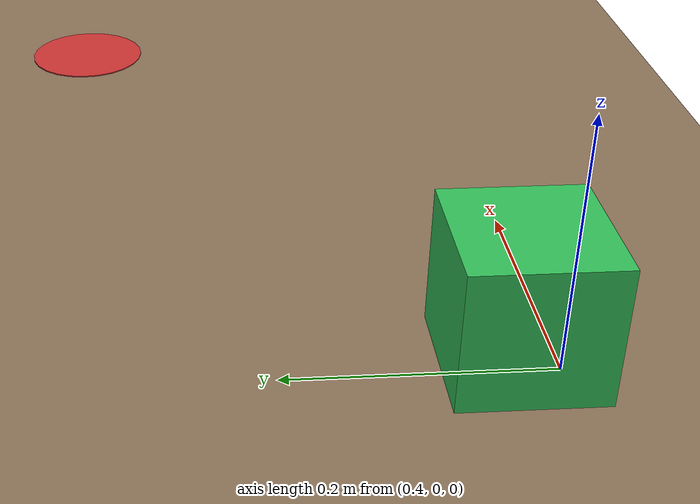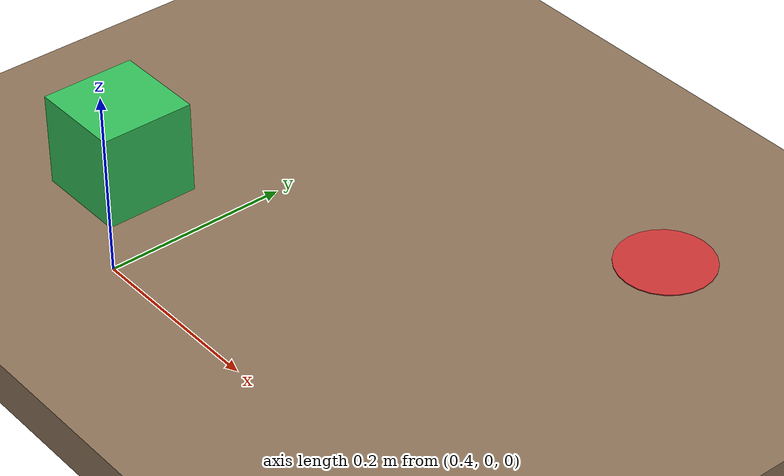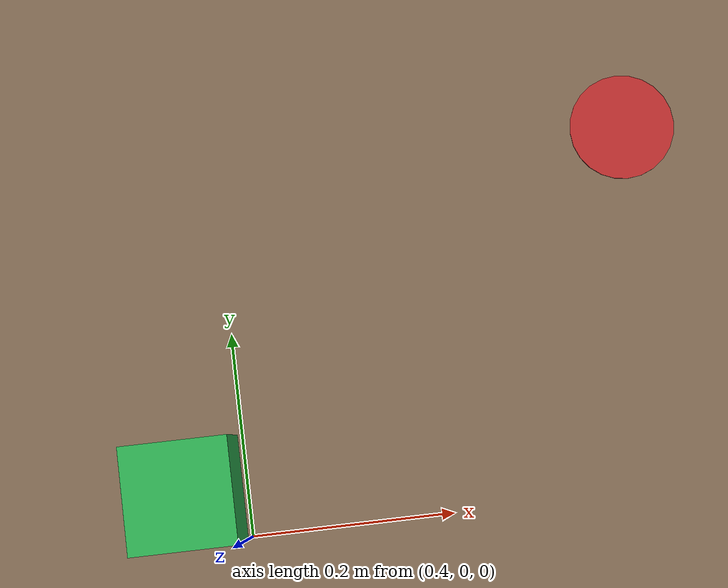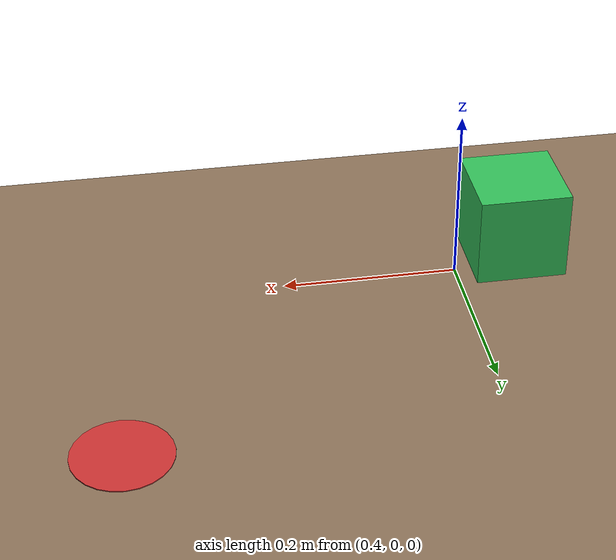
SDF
<?xml version="1.0"?>
<sdf version="1.7">
  <world name="default">
    <model name="table">
      <static>true</static>
      <pose>0.2 0.0 0.025 0 0 0</pose>
      <link name="table_link">
        <visual name="table_visual">
          <geometry><box><size>2 2 0.05</size></box></geometry>
          <material><diffuse>0.55 0.45 0.35 1.0</diffuse></material>
        </visual>
        <collision name="table_collision">
          <geometry><box><size>2 2 0.05</size></box></geometry>
          <surface>
            <friction>
              <ode><mu>0.5</mu><mu2>0.5</mu2></ode>
            </friction>
          </surface>
        </collision>
      </link>
    </model>
    <model name="object">
      <pose>0.35 0.05 0.1 0 0 0</pose>
      <link name="object_link">
        <inertial>
          <mass>0.5</mass>
          <inertia>
            <ixx>0.000833333</ixx><iyy>0.000833333</iyy><izz>0.000833333</izz>
            <ixy>0</ixy><ixz>0</ixz><iyz>0</iyz>
          </inertia>
        </inertial>
        <visual name="object_visual">
          <geometry><box><size>0.1 0.1 0.1</size></box></geometry>
          <material><diffuse>0.2 0.75 0.35 1.0</diffuse></material>
        </visual>
        <collision name="object_collision">
          <geometry><box><size>0.1 0.1 0.1</size></box></geometry>
          <surface>
            <friction>
              <ode><mu>0.8</mu><mu2>0.8</mu2></ode>
            </friction>
          </surface>
        </collision>
      </link>
    </model>
    <model name="cylinder_target">
      <pose>0.8 0.35 0.075 0 0 0</pose>
      <static>true</static>
      <link name="link">
        <inertial>
          <mass>0.05</mass>
          <inertia>
            <ixx>1.67e-5</ixx>
            <iyy>1.67e-5</iyy>
            <izz>3.33e-5</izz>
            <ixy>0</ixy>
            <ixz>0</ixz>
            <iyz>0</iyz>
          </inertia>
        </inertial>
        <visual name="visual">
          <geometry>
            <cylinder>
              <radius>0.05</radius>
              <length>0.001</length>
            </cylinder>
          </geometry>
          <material>
            <diffuse>0.8 0.2 0.2 1.0</diffuse>
          </material>
        </visual>
      </link>
    </model>
  </world>
</sdf>
